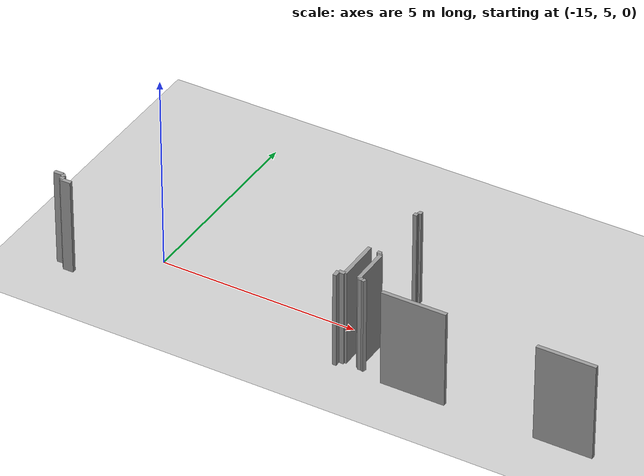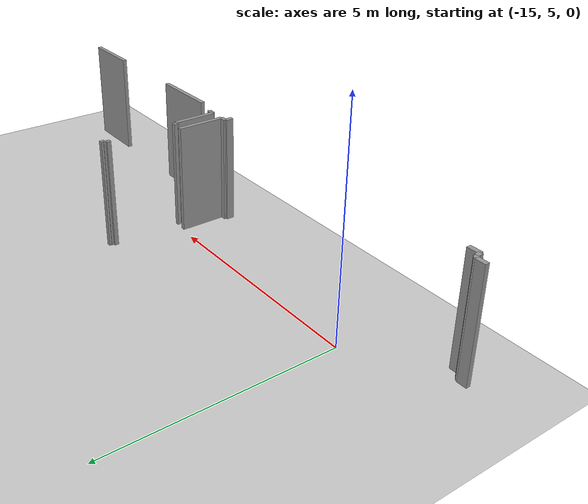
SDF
<sdf version="1.6">
 <world name="default">
  <model name="ground_plane">
   <static>1</static>
   <link name="link">
    <collision name="collision">
     <geometry><plane><normal>0 0 1</normal><size>100 100</size></plane></geometry>
     <surface><friction><ode><mu>100</mu><mu2>50</mu2></ode></friction></surface>
    </collision>
    <visual name="visual">
     <cast_shadows>0</cast_shadows>
     <geometry><plane><normal>0 0 1</normal><size>100 100</size></plane></geometry>
     <material>
      <script><uri>file://media/materials/scripts/gazebo.material</uri><name>Gazebo/Grey</name></script>
     </material>
    </visual>
   </link>
  </model>
  <model name="50055648">
   <static>1</static>
   <link name="Wall_0">
    <collision name="Wall_0_Collision">
     <geometry><box><size>0.265748656648 0.1 2.5</size></box></geometry>
     <pose>0.132874328324 0 1.25 0 0 0</pose>
    </collision>
    <visual name="Wall_0_Visual">
     <pose>0.132874328324 0 1.25 0 0 0</pose>
     <geometry><box><size>0.265748656648 0.1 2.5</size></box></geometry>
     <material>
      <script><uri>file://media/materials/scripts/gazebo.material</uri><name>Gazebo/Grey</name></script>
      <ambient>1 1 1 1</ambient>
     </material>
    </visual>
    <pose>0.557157556433 -20.3636894857 0 0 0 3.14159265359</pose>
   </link>
   <link name="Wall_1">
    <collision name="Wall_1_Collision">
     <geometry><box><size>0.112168290545 0.1 2.5</size></box></geometry>
     <pose>0.0560841452725 0 1.25 0 0 0</pose>
    </collision>
    <visual name="Wall_1_Visual">
     <pose>0.0560841452725 0 1.25 0 0 0</pose>
     <geometry><box><size>0.112168290545 0.1 2.5</size></box></geometry>
     <material>
      <script><uri>file://media/materials/scripts/gazebo.material</uri><name>Gazebo/Grey</name></script>
      <ambient>1 1 1 1</ambient>
     </material>
    </visual>
    <pose>0.291408899785 -20.3636894857 0 0 0 1.57079632679</pose>
   </link>
   <link name="Wall_2">
    <collision name="Wall_2_Collision">
     <geometry><box><size>0.0939563386036 0.1 2.5</size></box></geometry>
     <pose>0.0469781693018 0 1.25 0 0 0</pose>
    </collision>
    <visual name="Wall_2_Visual">
     <pose>0.0469781693018 0 1.25 0 0 0</pose>
     <geometry><box><size>0.0939563386036 0.1 2.5</size></box></geometry>
     <material>
      <script><uri>file://media/materials/scripts/gazebo.material</uri><name>Gazebo/Grey</name></script>
      <ambient>1 1 1 1</ambient>
     </material>
    </visual>
    <pose>0.291408899785 -20.2515211951 0 0 0 2.35619449019</pose>
   </link>
   <link name="Wall_3">
    <collision name="Wall_3_Collision">
     <geometry><box><size>0.220144561172 0.1 2.5</size></box></geometry>
     <pose>0.110072280586 0 1.25 0 0 0</pose>
    </collision>
    <visual name="Wall_3_Visual">
     <pose>0.110072280586 0 1.25 0 0 0</pose>
     <geometry><box><size>0.220144561172 0.1 2.5</size></box></geometry>
     <material>
      <script><uri>file://media/materials/scripts/gazebo.material</uri><name>Gazebo/Grey</name></script>
      <ambient>1 1 1 1</ambient>
     </material>
    </visual>
    <pose>0.224971735623 -20.1850840309 0 0 0 3.14159265359</pose>
   </link>
   <link name="Wall_8">
    <collision name="Wall_8_Collision">
     <geometry><box><size>1.09830921863 0.1 2.5</size></box></geometry>
     <pose>0.549154609316 0 1.25 0 0 0</pose>
    </collision>
    <visual name="Wall_8_Visual">
     <pose>0.549154609316 0 1.25 0 0 0</pose>
     <geometry><box><size>1.09830921863 0.1 2.5</size></box></geometry>
     <material>
      <script><uri>file://media/materials/scripts/gazebo.material</uri><name>Gazebo/Grey</name></script>
      <ambient>1 1 1 1</ambient>
     </material>
    </visual>
    <pose>7.56723110733 -19.0963021303 0 0 0 -1.57079632679</pose>
   </link>
   <link name="Wall_9">
    <collision name="Wall_9_Collision">
     <geometry><box><size>0.160058942341 0.1 2.5</size></box></geometry>
     <pose>0.0800294711703 0 1.25 0 0 0</pose>
    </collision>
    <visual name="Wall_9_Visual">
     <pose>0.0800294711703 0 1.25 0 0 0</pose>
     <geometry><box><size>0.160058942341 0.1 2.5</size></box></geometry>
     <material>
      <script><uri>file://media/materials/scripts/gazebo.material</uri><name>Gazebo/Grey</name></script>
      <ambient>1 1 1 1</ambient>
     </material>
    </visual>
    <pose>7.56723110733 -20.1946113489 0 0 0 3.14159265359</pose>
   </link>
   <link name="Wall_10">
    <collision name="Wall_10_Collision">
     <geometry><box><size>0.181527165559 0.1 2.5</size></box></geometry>
     <pose>0.0907635827797 0 1.25 0 0 0</pose>
    </collision>
    <visual name="Wall_10_Visual">
     <pose>0.0907635827797 0 1.25 0 0 0</pose>
     <geometry><box><size>0.181527165559 0.1 2.5</size></box></geometry>
     <material>
      <script><uri>file://media/materials/scripts/gazebo.material</uri><name>Gazebo/Grey</name></script>
      <ambient>1 1 1 1</ambient>
     </material>
    </visual>
    <pose>7.40717216499 -20.1946113489 0 0 0 -1.57079632679</pose>
   </link>
   <link name="Wall_20">
    <collision name="Wall_20_Collision">
     <geometry><box><size>0.0765317725464 0.1 2.5</size></box></geometry>
     <pose>0.0382658862732 0 1.25 0 0 0</pose>
    </collision>
    <visual name="Wall_20_Visual">
     <pose>0.0382658862732 0 1.25 0 0 0</pose>
     <geometry><box><size>0.0765317725464 0.1 2.5</size></box></geometry>
     <material>
      <script><uri>file://media/materials/scripts/gazebo.material</uri><name>Gazebo/Grey</name></script>
      <ambient>1 1 1 1</ambient>
     </material>
    </visual>
    <pose>8.09110656623 -20.2233203338 0 0 0 2.80671949291</pose>
   </link>
   <link name="Wall_21">
    <collision name="Wall_21_Collision">
     <geometry><box><size>0.100481447136 0.1 2.5</size></box></geometry>
     <pose>0.050240723568 0 1.25 0 0 0</pose>
    </collision>
    <visual name="Wall_21_Visual">
     <pose>0.050240723568 0 1.25 0 0 0</pose>
     <geometry><box><size>0.100481447136 0.1 2.5</size></box></geometry>
     <material>
      <script><uri>file://media/materials/scripts/gazebo.material</uri><name>Gazebo/Grey</name></script>
      <ambient>1 1 1 1</ambient>
     </material>
    </visual>
    <pose>8.01882598036 -20.1981682143 0 0 0 3.14159265359</pose>
   </link>
   <link name="Wall_22">
    <collision name="Wall_22_Collision">
     <geometry><box><size>0.972294559266 0.1 2.5</size></box></geometry>
     <pose>0.486147279633 0 1.25 0 0 0</pose>
    </collision>
    <visual name="Wall_22_Visual">
     <pose>0.486147279633 0 1.25 0 0 0</pose>
     <geometry><box><size>0.972294559266 0.1 2.5</size></box></geometry>
     <material>
      <script><uri>file://media/materials/scripts/gazebo.material</uri><name>Gazebo/Grey</name></script>
      <ambient>1 1 1 1</ambient>
     </material>
    </visual>
    <pose>7.91834453322 -20.1981682143 0 0 0 1.57079632679</pose>
   </link>
   <link name="Wall_23">
    <collision name="Wall_23_Collision">
     <geometry><box><size>0.0813737817576 0.1 2.5</size></box></geometry>
     <pose>0.0406868908788 0 1.25 0 0 0</pose>
    </collision>
    <visual name="Wall_23_Visual">
     <pose>0.0406868908788 0 1.25 0 0 0</pose>
     <geometry><box><size>0.0813737817576 0.1 2.5</size></box></geometry>
     <material>
      <script><uri>file://media/materials/scripts/gazebo.material</uri><name>Gazebo/Grey</name></script>
      <ambient>1 1 1 1</ambient>
     </material>
    </visual>
    <pose>7.91834453322 -19.2258736551 0 0 0 2.72194179145</pose>
   </link>
   <link name="Wall_24">
    <collision name="Wall_24_Collision">
     <geometry><box><size>0.0832052438358 0.1 2.5</size></box></geometry>
     <pose>0.0416026219179 0 1.25 0 0 0</pose>
    </collision>
    <visual name="Wall_24_Visual">
     <pose>0.0416026219179 0 1.25 0 0 0</pose>
     <geometry><box><size>0.0832052438358 0.1 2.5</size></box></geometry>
     <material>
      <script><uri>file://media/materials/scripts/gazebo.material</uri><name>Gazebo/Grey</name></script>
      <ambient>1 1 1 1</ambient>
     </material>
    </visual>
    <pose>7.84403145285 -19.1927185884 0 0 0 1.57079632679</pose>
   </link>
   <link name="Wall_25">
    <collision name="Wall_25_Collision">
     <geometry><box><size>0.0973056744706 0.1 2.5</size></box></geometry>
     <pose>0.0486528372353 0 1.25 0 0 0</pose>
    </collision>
    <visual name="Wall_25_Visual">
     <pose>0.0486528372353 0 1.25 0 0 0</pose>
     <geometry><box><size>0.0973056744706 0.1 2.5</size></box></geometry>
     <material>
      <script><uri>file://media/materials/scripts/gazebo.material</uri><name>Gazebo/Grey</name></script>
      <ambient>1 1 1 1</ambient>
     </material>
    </visual>
    <pose>7.84403145285 -17.5615147165 0 0 0 1.57079632679</pose>
   </link>
   <link name="Wall_26">
    <collision name="Wall_26_Collision">
     <geometry><box><size>0.0570368770722 0.1 2.5</size></box></geometry>
     <pose>0.0285184385361 0 1.25 0 0 0</pose>
    </collision>
    <visual name="Wall_26_Visual">
     <pose>0.0285184385361 0 1.25 0 0 0</pose>
     <geometry><box><size>0.0570368770722 0.1 2.5</size></box></geometry>
     <material>
      <script><uri>file://media/materials/scripts/gazebo.material</uri><name>Gazebo/Grey</name></script>
      <ambient>1 1 1 1</ambient>
     </material>
    </visual>
    <pose>7.84403145285 -17.4642090421 0 0 0 0.0</pose>
   </link>
   <link name="Wall_27">
    <collision name="Wall_27_Collision">
     <geometry><box><size>0.102132848922 0.1 2.5</size></box></geometry>
     <pose>0.0510664244611 0 1.25 0 0 0</pose>
    </collision>
    <visual name="Wall_27_Visual">
     <pose>0.0510664244611 0 1.25 0 0 0</pose>
     <geometry><box><size>0.102132848922 0.1 2.5</size></box></geometry>
     <material>
      <script><uri>file://media/materials/scripts/gazebo.material</uri><name>Gazebo/Grey</name></script>
      <ambient>1 1 1 1</ambient>
     </material>
    </visual>
    <pose>7.90106832992 -17.4642090421 0 0 0 1.57079632679</pose>
   </link>
   <link name="Wall_35">
    <collision name="Wall_35_Collision">
     <geometry><box><size>1.46479338423 0.1 2.5</size></box></geometry>
     <pose>0.732396692115 0 1.25 0 0 0</pose>
    </collision>
    <visual name="Wall_35_Visual">
     <pose>0.732396692115 0 1.25 0 0 0</pose>
     <geometry><box><size>1.46479338423 0.1 2.5</size></box></geometry>
     <material>
      <script><uri>file://media/materials/scripts/gazebo.material</uri><name>Gazebo/Grey</name></script>
      <ambient>1 1 1 1</ambient>
     </material>
    </visual>
    <pose>13.8923540097 -20.3661030729 0 0 0 3.14159265359</pose>
   </link>
   <link name="Wall_36">
    <collision name="Wall_36_Collision">
     <geometry><box><size>1.61646913028 0.1 2.5</size></box></geometry>
     <pose>0.80823456514 0 1.25 0 0 0</pose>
    </collision>
    <visual name="Wall_36_Visual">
     <pose>0.80823456514 0 1.25 0 0 0</pose>
     <geometry><box><size>1.61646913028 0.1 2.5</size></box></geometry>
     <material>
      <script><uri>file://media/materials/scripts/gazebo.material</uri><name>Gazebo/Grey</name></script>
      <ambient>1 1 1 1</ambient>
     </material>
    </visual>
    <pose>10.2162066031 -20.3661030729 0 0 0 -3.14057104294</pose>
   </link>
   <pose>-17.15 24.0530474714 0 0 0 0</pose>
  </model>
 </world>
</sdf>
